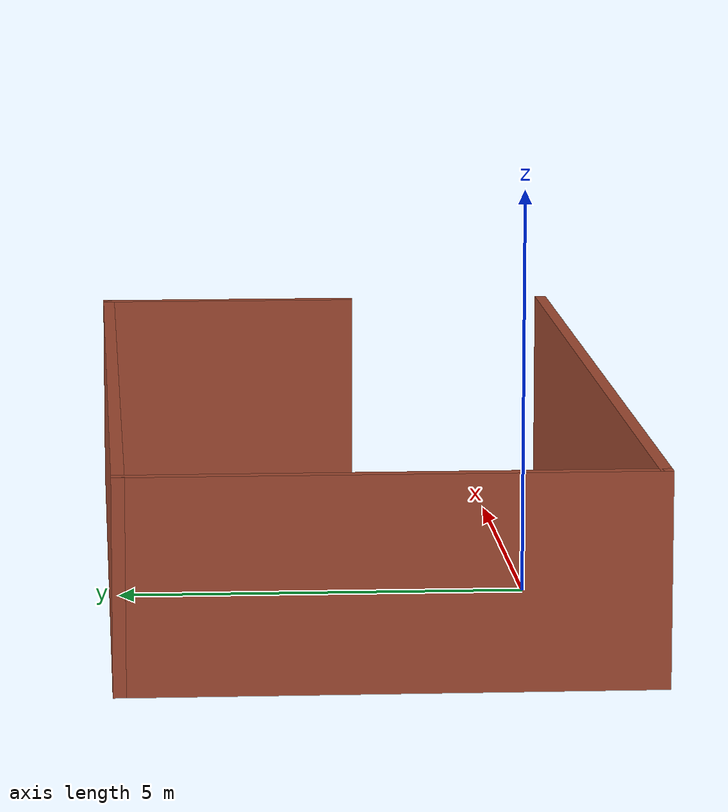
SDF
<?xml version='1.0'?>
<sdf version='1.7'>
  <model name='table1'>
    <pose>1.28609 1.99621 0 0 -0 0</pose>
    <link name='Wall_1'>
      <collision name='Wall_1_Collision'>
        <geometry>
          <box>
            <size>12.75 0.15 2.5</size>
          </box>
        </geometry>
        <pose>0 0 1.25 0 -0 0</pose>
      </collision>
      <visual name='Wall_1_Visual'>
        <pose>0 0 1.25 0 -0 0</pose>
        <geometry>
          <box>
            <size>12.75 0.15 2.5</size>
          </box>
        </geometry>
        <material>
          <script>
            <uri>file://media/materials/scripts/gazebo.material</uri>
            <name>Gazebo/Bricks</name>
          </script>
          <ambient>1 1 1 1</ambient>
        </material>
        <meta>
          <layer>0</layer>
        </meta>
      </visual>
      <pose>0 3.05 0 0 -0 0</pose>
    </link>
    <link name='Wall_3'>
      <collision name='Wall_3_Collision'>
        <geometry>
          <box>
            <size>12.75 0.15 2.5</size>
          </box>
        </geometry>
        <pose>0 0 1.25 0 -0 0</pose>
      </collision>
      <visual name='Wall_3_Visual'>
        <pose>0 0 1.25 0 -0 0</pose>
        <geometry>
          <box>
            <size>12.75 0.15 2.5</size>
          </box>
        </geometry>
        <material>
          <script>
            <uri>file://media/materials/scripts/gazebo.material</uri>
            <name>Gazebo/Bricks</name>
          </script>
          <ambient>1 1 1 1</ambient>
        </material>
        <meta>
          <layer>0</layer>
        </meta>
      </visual>
      <pose>0 -3.05 0 0 -0 3.14159</pose>
    </link>
    <link name='Wall_5'>
      <collision name='Wall_5_Collision'>
        <geometry>
          <box>
            <size>6.25 0.15 2.5</size>
          </box>
        </geometry>
        <pose>0 0 1.25 0 -0 0</pose>
      </collision>
      <visual name='Wall_5_Visual'>
        <pose>0 0 1.25 0 -0 0</pose>
        <geometry>
          <box>
            <size>6.25 0.15 2.5</size>
          </box>
        </geometry>
        <material>
          <script>
            <uri>file://media/materials/scripts/gazebo.material</uri>
            <name>Gazebo/Bricks</name>
          </script>
          <ambient>1 1 1 1</ambient>
        </material>
        <meta>
          <layer>0</layer>
        </meta>
      </visual>
      <pose>-6.3 -0 0 0 -0 -1.5708</pose>
    </link>
    <link name='Wall_7'>
      <collision name='Wall_7_Collision'>
        <geometry>
          <box>
            <size>3.5 0.15 2.5</size>
          </box>
        </geometry>
        <pose>0 0 1.25 0 -0 0</pose>
      </collision>
      <visual name='Wall_7_Visual'>
        <pose>0 0 1.25 0 -0 0</pose>
        <geometry>
          <box>
            <size>3.5 0.15 2.5</size>
          </box>
        </geometry>
        <material>
          <script>
            <uri>file://media/materials/scripts/gazebo.material</uri>
            <name>Gazebo/Bricks</name>
          </script>
          <ambient>1 1 1 1</ambient>
        </material>
        <meta>
          <layer>0</layer>
        </meta>
      </visual>
      <pose>6.3 1.375 0 0 -0 -1.5708</pose>
    </link>
    <static>1</static>
  </model>
</sdf>
